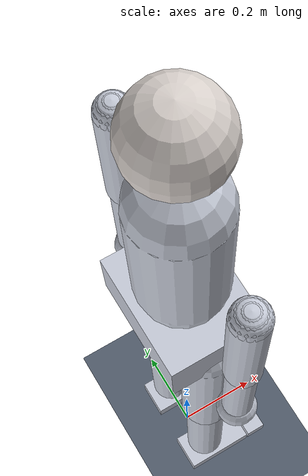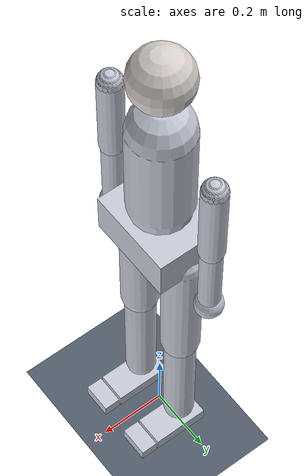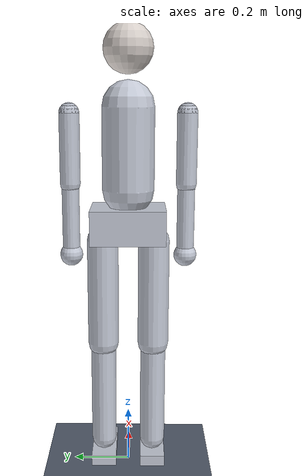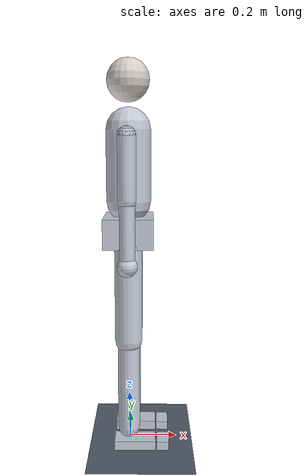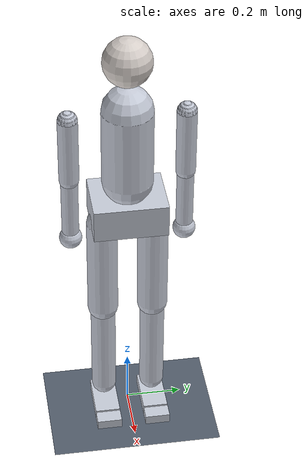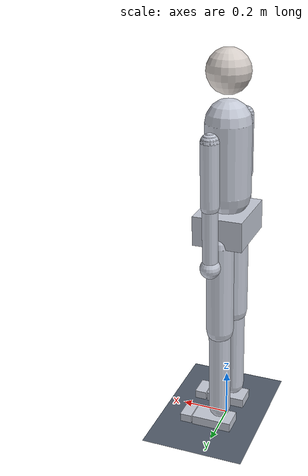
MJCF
<mujoco model="TX34_NOVA_v1">
  <compiler angle="radian" autolimits="true"/>
  <option timestep="0.005"/>

  <default>
    <joint damping="2" armature="0.02" limited="true"/>
    <geom contype="0" conaffinity="0" friction="1 0.005 0.0001" rgba="0.78 0.80 0.85 1"/>
    <position kp="80" forcerange="-150 150"/>
  </default>

  <worldbody>
    <light pos="0 0 3" dir="0 0 -1" diffuse="1 1 1"/>
    <geom name="floor" type="plane" size="5 5 0.1" contype="1" conaffinity="1" rgba="0.32 0.36 0.42 1"/>

    <body name="pelvis" pos="0 0 0.912">
      <freejoint/>
      <geom type="box" size="0.10 0.13 0.06" mass="5.4"/>

      <!-- ============ TRONCO, TESTA, BRACCIA ============ -->
      <body name="torso" pos="0 0 0.10">
        <geom name="r_act_sh_pitch" type="sphere" size="0.035" pos="0 -0.20 0.28" mass="1.047" contype="0" conaffinity="0"/>
        <geom name="l_act_sh_pitch" type="sphere" size="0.035" pos="0 0.20 0.28" mass="1.047" contype="0" conaffinity="0"/>
        <joint name="waist_yaw" axis="0 0 1" range="-0.2793 0.2793"/>
        <geom type="capsule" fromto="0 0 0.02 0 0 0.30" size="0.09" mass="17.3"/>

        <body name="head" pos="0 0 0.40">
          <joint name="neck_yaw"   axis="0 0 1" range="-1.0 1.0"/>
          <joint name="neck_pitch" axis="0 1 0" range="-0.6 0.6"/>
          <geom type="sphere" size="0.085" pos="0 0 0.09" mass="2.8" rgba="0.85 0.82 0.80 1"/>
        </body>

        <body name="r_upper_arm" pos="0 -0.20 0.28">
          <geom name="r_act_sh_roll" type="sphere" size="0.03" pos="0 0 0" mass="0.667" contype="0" conaffinity="0"/>
        <joint name="r_shoulder_pitch" axis="0 1 0" range="-2.8274 0.9425"/>
          <joint name="r_shoulder_roll"  axis="1 0 0" range="-1.414 1.414"/>
          <geom type="capsule" fromto="0 0 0 0 0 -0.24" size="0.035" mass="1.5"/>
          <body name="r_forearm" pos="0 0 -0.24">
            <joint name="r_elbow" axis="0 1 0" range="-2.3 0.0"/>
            <geom type="capsule" fromto="0 0 0 0 0 -0.22" size="0.030" mass="1.0"/>
            <body name="r_hand" pos="0 0 -0.25">
              <joint name="r_wrist_pitch" axis="0 1 0" range="-0.8 0.8"/>
              <geom type="sphere" size="0.04" mass="0.75"/>
            </body>
          </body>
        </body>

        <body name="l_upper_arm" pos="0 0.20 0.28">
          <geom name="l_act_sh_roll" type="sphere" size="0.03" pos="0 0 0" mass="0.667" contype="0" conaffinity="0"/>
        <joint name="l_shoulder_pitch" axis="0 1 0" range="-2.8274 0.9425"/>
          <joint name="l_shoulder_roll"  axis="1 0 0" range="-1.414 1.414"/>
          <geom type="capsule" fromto="0 0 0 0 0 -0.24" size="0.035" mass="1.5"/>
          <body name="l_forearm" pos="0 0 -0.24">
            <joint name="l_elbow" axis="0 1 0" range="-2.3 0.0"/>
            <geom type="capsule" fromto="0 0 0 0 0 -0.22" size="0.030" mass="1.0"/>
            <body name="l_hand" pos="0 0 -0.25">
              <joint name="l_wrist_pitch" axis="0 1 0" range="-0.8 0.8"/>
              <geom type="sphere" size="0.04" mass="0.75"/>
            </body>
          </body>
        </body>
      </body>

      <!-- ============ GAMBA DESTRA (7 DOF) ============ -->
      <body name="r_thigh" pos="0 -0.09 -0.06">
        <joint name="r_hip_yaw"   axis="0 0 1" range="-0.70 0.70"/>
        <joint name="r_hip_roll"  axis="1 0 0" range="-0.47 0.47"/>
        <joint name="r_hip_pitch" axis="0 1 0" range="-1.885 0.4712"/>
        <geom type="capsule" fromto="0 0 0 0 0 -0.38" size="0.055" mass="6.8"/>
        <body name="r_shank" pos="0 0 -0.38">
          <joint name="r_knee" axis="0 1 0" range="0.0 2.05"/>
          <geom type="capsule" fromto="0 0 0 0 0 -0.38" size="0.045" mass="4.0"/>
          <body name="r_foot" pos="0 0 -0.40">
            <joint name="r_ankle_pitch" axis="0 1 0" range="-0.4700 0.4700"/>
            <joint name="r_ankle_roll"  axis="1 0 0" range="-0.23 0.23"/>
            <geom name="r_sole" type="box" pos="0.0250 0 -0.05" size="0.0850 0.045 0.02"
                  mass="4.3" contype="1" conaffinity="1"/>
            <body name="r_toe" pos="0.1150 0 -0.05">
              <joint name="r_toe_pitch" axis="0 1 0" range="0.0349 0.6981"/>
              <geom name="r_toe_geom" type="box" pos="0.025 0 0" size="0.025 0.045 0.018"
                    mass="0.3" contype="1" conaffinity="1"/>
            </body>
          </body>
        </body>
      </body>

      <!-- ============ GAMBA SINISTRA (7 DOF) ============ -->
      <body name="l_thigh" pos="0 0.09 -0.06">
        <joint name="l_hip_yaw"   axis="0 0 1" range="-0.70 0.70"/>
        <joint name="l_hip_roll"  axis="1 0 0" range="-0.47 0.47"/>
        <joint name="l_hip_pitch" axis="0 1 0" range="-1.885 0.4712"/>
        <geom type="capsule" fromto="0 0 0 0 0 -0.38" size="0.055" mass="6.8"/>
        <body name="l_shank" pos="0 0 -0.38">
          <joint name="l_knee" axis="0 1 0" range="0.0 2.05"/>
          <geom type="capsule" fromto="0 0 0 0 0 -0.38" size="0.045" mass="4.0"/>
          <body name="l_foot" pos="0 0 -0.40">
            <joint name="l_ankle_pitch" axis="0 1 0" range="-0.4700 0.4700"/>
            <joint name="l_ankle_roll"  axis="1 0 0" range="-0.23 0.23"/>
            <geom name="l_sole" type="box" pos="0.0250 0 -0.05" size="0.0850 0.045 0.02"
                  mass="4.3" contype="1" conaffinity="1"/>
            <body name="l_toe" pos="0.1150 0 -0.05">
              <joint name="l_toe_pitch" axis="0 1 0" range="0.0349 0.6981"/>
              <geom name="l_toe_geom" type="box" pos="0.025 0 0" size="0.025 0.045 0.018"
                    mass="0.3" contype="1" conaffinity="1"/>
            </body>
          </body>
        </body>
      </body>
    </body>
  </worldbody>

  <actuator>
    <position joint="waist_yaw" kp="100" forcerange="-30 30"/>
    <position joint="neck_yaw" kp="30" forcerange="-10 10"/>
    <position joint="neck_pitch" kp="30" forcerange="-10 10"/>
    <position joint="r_shoulder_pitch" kp="60" forcerange="-43 43"/>
    <position joint="r_shoulder_roll" kp="60" forcerange="-20 20"/>
    <position joint="r_elbow" kp="40" forcerange="-30 30"/>
    <position joint="r_wrist_pitch" kp="20" forcerange="-10 10"/>
    <position joint="l_shoulder_pitch" kp="60" forcerange="-43 43"/>
    <position joint="l_shoulder_roll" kp="60" forcerange="-20 20"/>
    <position joint="l_elbow" kp="40" forcerange="-30 30"/>
    <position joint="l_wrist_pitch" kp="20" forcerange="-10 10"/>
    <position joint="r_hip_yaw" kp="200" forcerange="-80 80"/>
    <position joint="r_hip_roll" kp="200" forcerange="-80 80"/>
    <position joint="r_hip_pitch" kp="200" forcerange="-120 120"/>
    <position joint="r_knee" kp="200" forcerange="-120 120"/>
    <position joint="r_ankle_pitch" kp="130" forcerange="-80 80"/>
    <position joint="r_ankle_roll" kp="130" forcerange="-80 80"/>
    <position joint="r_toe_pitch" kp="30" forcerange="-6 6"/>
    <position joint="l_hip_yaw" kp="200" forcerange="-80 80"/>
    <position joint="l_hip_roll" kp="200" forcerange="-80 80"/>
    <position joint="l_hip_pitch" kp="200" forcerange="-120 120"/>
    <position joint="l_knee" kp="200" forcerange="-120 120"/>
    <position joint="l_ankle_pitch" kp="130" forcerange="-80 80"/>
    <position joint="l_ankle_roll" kp="130" forcerange="-80 80"/>
    <position joint="l_toe_pitch" kp="30" forcerange="-6 6"/>
  </actuator>

  <keyframe>
    <key name="stand"
         qpos="0 0 0.912 1 0 0 0  0 0 0 0 0 0 0 0 0 0 0  0 0 0 0 0 0 0  0 0 0 0 0 0 0"
         ctrl="0 0 0 0 0 0 0 0 0 0 0 0 0 0 0 0 0 0 0 0 0 0 0 0 0"/>
  </keyframe>
</mujoco>
